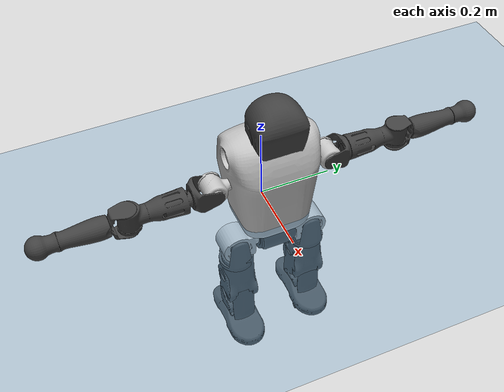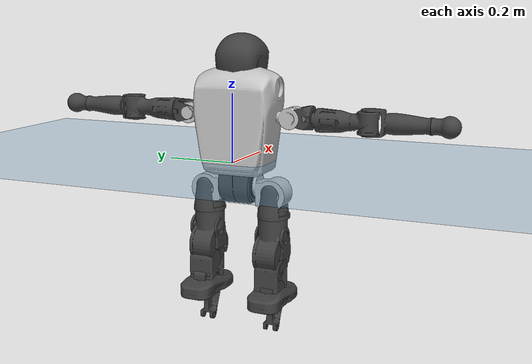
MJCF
<mujoco model="T1">
  <compiler angle="radian" assetdir="assets" balanceinertia="true" inertiafromgeom="false"/>

  <option timestep="0.005" density="1.2" viscosity="2e-05"/>

  <size nkey="1"/>

  <visual>
    <quality shadowsize="8192"/>
    <map shadowclip="0.5"/>
  </visual>

  <default>
    <default class="/">
      <joint armature="0.01" damping="0.01" frictionloss="0.1"/>
      <geom contype="0" conaffinity="0" group="1" solref="-1000 -80"/>
      <site size="0.01 0.005 0.005" group="5"/>
      <general forcelimited="true" biastype="affine" gainprm="25" biasprm="0 -25 -0.6"/>
      <default class="t1">
        <geom rgba="0.25 0.25 0.25 1"/>
        <default class="visual">
          <geom type="mesh" group="2"/>
        </default>
        <default class="collision">
          <geom group="3"/>
        </default>
        <default class="foot">
          <geom size="0.1115 0.05 0.015" type="box" condim="6" group="4" priority="1" solimp="0.015 1 0.015"/>
        </default>
        <default class="reward_collision_sphere">
          <geom group="5" rgba="1 0 0 1"/>
        </default>
      </default>
    </default>
  </default>

  <asset>
    <texture type="skybox" colorspace="auto" name="//unnamed_texture_0" builtin="gradient" rgb1="0.95 0.95 0.95" rgb2="0.95 0.95 0.95" width="100" height="600"/>
    <texture type="2d" colorspace="auto" name="texplane" builtin="checker" rgb1="0.345 0.575 0.748" rgb2="0.345 0.575 0.748" markrgb="1 1 1" width="512" height="512"/>
    <material name="MatPlane" class="/" texture="texplane" texuniform="true" texrepeat="2 2" specular="0.9"/>
    <mesh name="Trunk" class="/" file="Trunk.stl"/>
    <mesh name="H1" class="/" file="H1.stl"/>
    <mesh name="H2" class="/" file="H2.stl"/>
    <mesh name="AL1" class="/" file="AL1.stl"/>
    <mesh name="AL2" class="/" file="AL2.stl"/>
    <mesh name="AL3" class="/" file="AL3.stl"/>
    <mesh name="left_hand_link" class="/" file="left_hand_link.stl"/>
    <mesh name="AR1" class="/" file="AR1.stl"/>
    <mesh name="AR2" class="/" file="AR2.stl"/>
    <mesh name="AR3" class="/" file="AR3.stl"/>
    <mesh name="right_hand_link" class="/" file="right_hand_link.stl"/>
    <mesh name="Waist" class="/" file="Waist.stl"/>
    <mesh name="Hip_Pitch_Left" class="/" file="Hip_Pitch_Left.stl"/>
    <mesh name="Hip_Roll_Left" class="/" file="Hip_Roll_Left.stl"/>
    <mesh name="Hip_Yaw_Left" class="/" file="Hip_Yaw_Left.stl"/>
    <mesh name="Shank_Left" class="/" file="Shank_Left.stl"/>
    <mesh name="Ankle_Cross_Left" class="/" file="Ankle_Cross_Left.stl"/>
    <mesh name="left_foot_link" class="/" file="left_foot_link.stl"/>
    <mesh name="Hip_Pitch_Right" class="/" file="Hip_Pitch_Right.stl"/>
    <mesh name="Hip_Roll_Right" class="/" file="Hip_Roll_Right.stl"/>
    <mesh name="Hip_Yaw_Right" class="/" file="Hip_Yaw_Right.stl"/>
    <mesh name="Shank_Right" class="/" file="Shank_Right.stl"/>
    <mesh name="Ankle_Cross_Right" class="/" file="Ankle_Cross_Right.stl"/>
    <mesh name="right_foot_link" class="/" file="right_foot_link.stl"/>
  </asset>

  <worldbody>
    <geom name="floor" class="/" size="100 100 0.125" type="plane" group="0" material="MatPlane"/>
    <light name="toplight_shadow" class="/" pos="0 0 5" dir="0.0990148 0.0990148 -0.990148" type="directional" ambient="0.04 0.04 0.04" diffuse="0.55 0.55 0.55" specular="0.12 0.12 0.12"/>
    <light name="toplight_fill" class="/" pos="0 0 5" dir="0.0990148 0.0990148 -0.990148" type="directional" castshadow="false" ambient="0.04 0.04 0.04" diffuse="0.3 0.3 0.3" specular="0.08 0.08 0.08"/>
    <body name="trunk" childclass="t1" pos="-0.0017602 0.000284642 -0.00363456" quat="0.999999 0.000783932 -0.00083245 -0.000155266">
      <inertial pos="0.0558462 -0.00369131 0.0622885" quat="0.999957 0.000876966 -0.00917373 0.000981354" mass="8.60542" diaginertia="0.103964 0.0915704 0.00490473"/>
      <joint name="//unnamed_joint_0" type="free" armature="0" damping="0" frictionloss="0"/>
      <geom name="//unnamed_geom_1" class="visual" rgba="0.76 0.76 0.76 1" mesh="Trunk"/>
      <geom name="//unnamed_geom_2" class="collision" size="0.0661317 0.0881756 0.132263" pos="0.0609578 0 0.0724582" type="box"/>
      <geom name="//unnamed_geom_3" class="reward_collision_sphere" size="0.101402" pos="0.0609578 0 0.0603818"/>
      <geom name="//unnamed_geom_4" class="reward_collision_sphere" size="0.0132263" pos="0.0609578 0.0871663 0"/>
      <geom name="//unnamed_geom_5" class="reward_collision_sphere" size="0.0132263" pos="0.0609578 -0.0871663 0"/>
      <geom name="//unnamed_geom_6" class="reward_collision_sphere" size="0.0132263" pos="0.0609578 0.109727 0.108687"/>
      <geom name="//unnamed_geom_7" class="reward_collision_sphere" size="0.0132263" pos="0.0609578 -0.109727 0.108687"/>
      <site name="imu" pos="-0.0348269 0.0248302 0.00252583" size="0.00881756"/>
      <camera name="track" pos="0 -2.05097 0" quat="0.707107 0.707107 0 0" mode="trackcom"/>
      <camera name="ego_camera" pos="0.123948 0 0.253604" quat="-0.5 -0.5 0.5 0.5"/>
      <body name="H1" pos="0.0622415 0.000960532 0.145334" quat="1 3.97287e-05 -0.000201344 0.000392402">
        <inertial pos="-1.36025e-05 -0.00388031 0.0325252" quat="0.763802 -0.0208815 3.84354e-05 0.645112" mass="0.293228" diaginertia="0.000246098 0.00025121 1.13134e-05"/>
        <joint name="AAHead_yaw" pos="0 0 0" axis="0.00114391 0.000646454 0.999999" range="-1.55991 1.53923" armature="0.00961314" damping="0.0103952" frictionloss="0.0804188"/>
        <geom name="//unnamed_geom_8" class="visual" mesh="H1"/>
        <body name="H2" pos="-0.000390073 0.00555075 0.0359142" quat="1 1.53989e-05 -0.00040981 5.16685e-05">
          <inertial pos="0.000529537 -0.00479674 0.0575003" quat="0.987747 0.109807 -0.0737573 -0.0828096" mass="0.403003" diaginertia="0.00226979 0.00218593 0.000136822"/>
          <joint name="Head_pitch" pos="0 0 0" axis="-0.0083973 -0.999954 -0.00465292" range="-1.22868 0.308219" armature="0.0108769" damping="0.00857736" frictionloss="0.0859452"/>
          <geom name="//unnamed_geom_9" class="visual" mesh="H2"/>
          <geom name="//unnamed_geom_10" class="collision" size="0.0705405" pos="0.0101596 0 0.06642"/>
          <geom name="//unnamed_geom_11" class="reward_collision_sphere" size="0.079358" pos="0.0203193 0 0.0603818"/>
        </body>
      </body>
      <body name="AL1" pos="0.0620698 0.112217 0.135558" quat="1 -8.97011e-05 0.000426983 4.09292e-05">
        <inertial pos="-0.000499324 0.0459363 -0.00572896" quat="0.502126 0.496691 -0.505474 0.495644" mass="0.356315" diaginertia="0.00144607 0.00147318 2.37532e-05"/>
        <joint name="Left_Shoulder_Pitch" pos="0 0 0" axis="-0.0034679 0.999979 -0.00546108" stiffness="0.0237592" range="-3.20407 1.26015" armature="0.00979444" damping="0.0144575" frictionloss="0.0913458"/>
        <geom name="//unnamed_geom_12" class="visual" rgba="0.76 0.76 0.76 1" mesh="AL1"/>
        <body name="AL2" pos="0.00454237 0.0430219 0.0020212" quat="0.999994 0.000727644 0.000939028 0.00329339">
          <inertial pos="0.00447557 0.0380885 0.00330488" quat="0.493934 0.503377 -0.493213 0.509295" mass="0.0921344" diaginertia="0.000391792 0.000347058 1.27727e-05"/>
          <joint name="Left_Shoulder_Roll" pos="0 0 0" axis="-0.999199 0.00612424 0.0395497" stiffness="0.00382294" range="-1.54147 1.74974" armature="0.00863674" damping="0.0371584" frictionloss="0.0839455"/>
          <geom name="//unnamed_geom_13" class="visual" mesh="AL2"/>
          <body name="AL3" pos="0.00104588 0.0569176 0.00202727" quat="0.999993 0.00162506 0.000661786 -0.00335608">
            <inertial pos="0.00239253 0.0895777 0.000223331" quat="0.713914 0.700023 -0.0155047 -0.00744033" mass="0.650976" diaginertia="0.0126131 0.0137634 4.6439e-05"/>
            <joint name="Left_Elbow_Pitch" pos="0 0 0" axis="0.00220218 -0.999987 0.00469628" stiffness="0.00875718" range="-2.27287 2.2781" armature="0.00933498" damping="0.00563593" frictionloss="0.0914005"/>
            <geom name="//unnamed_geom_14" class="visual" mesh="AL3"/>
            <geom name="//unnamed_geom_15" class="collision" size="0.0264527 0.0661317" pos="0 0.0512743 0" quat="0.707105 0.707108 0 0" type="cylinder"/>
            <geom name="//unnamed_geom_16" class="reward_collision_sphere" size="0.0317432"/>
            <body name="left_hand_link" pos="0.00383084 0.144261 -0.00158359" quat="0.999996 0.000852238 0.00237953 0.00146618">
              <inertial pos="-0.00162178 0.112291 0.00572691" quat="0.699907 0.713867 -0.00830255 0.0213428" mass="0.24342" diaginertia="0.00960144 0.0102448 1.89361e-05"/>
              <joint name="Left_Elbow_Yaw" pos="0 0 0" axis="0.0216063 0.00226392 0.999764" range="-2.44126 -0.0730623" armature="0.00846135" damping="0.0161254" frictionloss="0.057509"/>
              <geom name="//unnamed_geom_17" class="visual" mesh="left_hand_link"/>
              <geom name="//unnamed_geom_18" class="collision" size="0.0264527 0.0771536" pos="0 0.133313 0" quat="0.707105 0.707108 0 0" type="cylinder"/>
              <geom name="//unnamed_geom_19" class="reward_collision_sphere" size="0.0440878"/>
              <geom name="//unnamed_geom_20" class="reward_collision_sphere" size="0.0308615" pos="0 0.112803 0"/>
              <geom name="//unnamed_geom_21" class="reward_collision_sphere" size="0.0308615" pos="0 0.22048 0"/>
            </body>
          </body>
        </body>
      </body>
      <body name="AR1" pos="0.0629381 -0.111479 0.135282" quat="1 0.000278924 -0.000713335 -0.000408323">
        <inertial pos="0.000740494 -0.0481631 0.0027097" quat="0.506789 0.487467 -0.504988 0.500529" mass="0.352125" diaginertia="0.00146608 0.00139027 2.24467e-05"/>
        <joint name="Right_Shoulder_Pitch" pos="0 0 0" axis="-0.00277967 -0.999996 -0.000955874" range="-1.34391 3.25729" armature="0.00817621" damping="0" frictionloss="0.0912489"/>
        <geom name="//unnamed_geom_22" class="visual" rgba="0.76 0.76 0.76 1" mesh="AR1"/>
        <body name="AR2" pos="0.00573736 -0.0514653 0.00201453" quat="1 7.55729e-05 -5.93208e-06 0.000184335">
          <inertial pos="0.00495903 -0.0382488 0.00275444" quat="0.515827 0.4882 -0.508075 0.487281" mass="0.113954" diaginertia="0.000467154 0.000431064 1.39911e-05"/>
          <joint name="Right_Shoulder_Roll" pos="0 0 0" axis="-0.999999 -0.000290682 -0.00143704" range="-1.75062 1.68808" armature="0.0092223" damping="0.0117148" frictionloss="0.11214"/>
          <geom name="//unnamed_geom_23" class="visual" mesh="AR2"/>
          <body name="AR3" pos="0.000602882 -0.0689439 -0.00498562" quat="0.999999 0.000114429 0.000823328 0.000719229">
            <inertial pos="-0.00020555 -0.08917 -0.000902677" quat="0.714518 0.69867 -0.00732016 -0.0356406" mass="0.698406" diaginertia="0.0139273 0.0140623 4.82477e-05"/>
            <joint name="Right_Elbow_Pitch" pos="0 0 0" axis="-0.00448233 0.999989 -0.00100795" range="-2.26612 2.25974" armature="0.00776479" damping="0" frictionloss="0.0612055"/>
            <geom name="//unnamed_geom_24" class="visual" mesh="AR3"/>
            <geom name="//unnamed_geom_25" class="collision" size="0.0264527 0.0661317" pos="0 -0.0512743 0" quat="0.707105 0.707108 0 0" type="cylinder"/>
            <geom name="//unnamed_geom_26" class="reward_collision_sphere" size="0.0317432"/>
            <body name="right_hand_link" pos="0.00492692 -0.152747 0.0012985" quat="1 9.30031e-05 0.000262057 0.00011537">
              <inertial pos="0.00237672 -0.112521 -0.00527365" quat="0.702753 0.710968 -0.0227703 0.0119903" mass="0.24981" diaginertia="0.00978574 0.0100779 1.88508e-05"/>
              <joint name="Right_Elbow_Yaw" pos="0 0 0" axis="0.013281 0.00703606 0.999887" range="0.0722468 2.47897" armature="0.00549393" damping="0.0138662" frictionloss="0.0868173"/>
              <geom name="//unnamed_geom_27" class="visual" mesh="right_hand_link"/>
              <geom name="//unnamed_geom_28" class="collision" size="0.0264527 0.0771536" pos="0 -0.133313 0" quat="0.707105 0.707108 0 0" type="cylinder"/>
              <geom name="//unnamed_geom_29" class="reward_collision_sphere" size="0.0440878"/>
              <geom name="//unnamed_geom_30" class="reward_collision_sphere" size="0.0308615" pos="0 -0.112803 0"/>
              <geom name="//unnamed_geom_31" class="reward_collision_sphere" size="0.0308615" pos="0 -0.22048 0"/>
            </body>
          </body>
        </body>
      </body>
      <body name="Waist" pos="0.0620847 0.00112315 -0.0661389" quat="1 -0.000224166 -0.000116646 0.000518677">
        <inertial pos="-0.00365718 -0.00070876 0.0030503" quat="0.983663 0.000894135 -0.179989 0.00319157" mass="1.8044" diaginertia="0.00610118 0.00675836 0.00040989"/>
        <joint name="Waist" pos="0 0 0" axis="0.00341524 -0.00557353 0.999979" range="-1.71247 1.57547" armature="0.0105691" damping="0.013282" frictionloss="0.0780651"/>
        <geom name="//unnamed_geom_32" class="visual" mesh="Waist"/>
        <body name="Hip_Pitch_Left" pos="0.00558525 0.103811 1.73533e-05" quat="0.999995 0.00158141 0.000361606 -0.00260635">
          <inertial pos="0.00229328 -0.0142727 -0.0107035" quat="0.97509 0.221333 0.0143938 0.00181094" mass="0.696198" diaginertia="0.00201716 0.0015329 0.000102784"/>
          <joint name="Left_Hip_Pitch" pos="0 0 0" axis="-0.0104379 0.999875 -0.0119052" range="-1.80376 1.5319" armature="0.00863116" damping="0.0124086" frictionloss="0.0874637"/>
          <geom name="//unnamed_geom_33" class="visual" rgba="0.76 0.76 0.76 1" mesh="Hip_Pitch_Left"/>
          <body name="Hip_Roll_Left" pos="-0.000999817 0.000170697 -0.011614" quat="0.999997 -0.000108582 -0.00119047 -0.00214147">
            <inertial pos="0.00312616 -0.00050188 -0.0343064" quat="0.707306 -0.00315661 -0.00242376 0.706897" mass="0.265232" diaginertia="0.00186814 0.00185668 4.43564e-05"/>
            <joint name="Left_Hip_Roll" pos="0 0 0" axis="-0.999985 0.00437031 -0.00339177" stiffness="0.0075748" range="-1.53077 0.172564" armature="0.0084199" damping="0" frictionloss="0.0720102"/>
            <geom name="//unnamed_geom_34" class="visual" mesh="Hip_Roll_Left"/>
            <geom name="//unnamed_geom_35" class="reward_collision_sphere" size="0.0484966"/>
            <body name="Hip_Yaw_Left" pos="-0.00211039 -0.0010841 -0.0468733" quat="1 0.000710074 -0.000276423 -0.000536263">
              <inertial pos="-0.00509141 -0.000727111 -0.0555509" quat="0.681548 -0.0598566 -0.0421545 0.728102" mass="1.48612" diaginertia="0.0285949 0.0311683 0.000205636"/>
              <joint name="Left_Hip_Yaw" pos="0 0 0" axis="-0.0252677 -2.48973e-06 -0.999681" stiffness="0.00315638" range="-0.991913 1.06242" armature="0.00857033" damping="0" frictionloss="0.0886178"/>
              <geom name="//unnamed_geom_36" class="visual" mesh="Hip_Yaw_Left"/>
              <geom name="//unnamed_geom_37" class="collision" size="0.0440878 0.0705405" type="cylinder"/>
              <body name="Shank_Left" pos="-0.0141994 0.000408645 -0.0810361" quat="1 5.35725e-05 -0.000127159 0.000384018">
                <inertial pos="-0.00707069 0.00139976 -0.0744176" quat="0.996325 -0.00147713 -0.0351307 0.0781095" mass="1.16219" diaginertia="0.0369427 0.0371903 0.000145929"/>
                <joint name="Left_Knee_Pitch" pos="0 0 0" axis="-0.00563941 0.999932 -0.0102157" range="0.0120088 2.35579" armature="0.00943879" damping="0" frictionloss="0.0681578"/>
                <geom name="//unnamed_geom_38" class="visual" mesh="Shank_Left"/>
                <geom name="//unnamed_geom_39" class="collision" size="0.0440878 0.0661317" pos="0 0 -0.0724582" type="cylinder"/>
                <geom name="//unnamed_geom_40" class="reward_collision_sphere" size="0.0573141"/>
                <body name="Ankle_Cross_Left" pos="-0.000693072 0.000646401 -0.168982" quat="1 0.000159304 0.000645744 -0.000418091">
                  <inertial pos="-0.00593977 -0.000630952 0.00236077" quat="0.444247 0.55098 0.553354 0.439165" mass="0.0481257" diaginertia="2.75767e-05 2.79641e-05 8.6398e-07"/>
                  <joint name="Left_Ankle_Pitch" pos="0 0 0" axis="0.00430426 0.99999 0.00156233" range="-0.722202 0.322992" armature="0.00926986" damping="0.0147355" frictionloss="0.0665849"/>
                  <geom name="//unnamed_geom_41" class="visual" mesh="Ankle_Cross_Left"/>
                  <body name="left_foot_link" pos="-0.00533382 0.000536571 -0.000979347" quat="1 0.000125009 -0.000355978 0.000279276">
                    <inertial pos="-0.0014397 0.00585502 -0.00338944" quat="0.00161995 0.616235 0.00261451 0.787556" mass="0.475956" diaginertia="0.00286134 0.0027197 0.000180246"/>
                    <joint name="Left_Ankle_Roll" pos="0 0 0" axis="-0.999974 -0.00339766 -0.00640921" range="-0.404764 0.431288" armature="0.00835759" damping="0" frictionloss="0.0983291"/>
                    <geom name="//unnamed_geom_42" class="visual" mesh="left_foot_link"/>
                    <geom name="left_foot" class="foot" size="0.103151 0.0338148 0.0130616" pos="0.0101596 0 -0.00905727"/>
                    <geom name="//unnamed_geom_44" class="reward_collision_sphere" size="0.0458513" pos="0.0101596 0 -0.00905727"/>
                    <geom name="//unnamed_geom_45" class="reward_collision_sphere" size="0.0264527" pos="0.0965165 -0.0235862 -0.00905727"/>
                    <geom name="//unnamed_geom_46" class="reward_collision_sphere" size="0.0264527" pos="-0.0711175 -0.0235862 -0.00905727"/>
                    <site name="left_foot" class="foot" pos="0.0101596 0 -0.00905727" size="0.00881756"/>
                  </body>
                </body>
              </body>
            </body>
          </body>
        </body>
        <body name="Hip_Pitch_Right" pos="0.000438546 -0.106572 -0.00360526" quat="1 -2.62904e-05 0.000274251 0.000376445">
          <inertial pos="0.000755422 0.00926094 -0.0166891" quat="0.9776 -0.210362 0.00463382 0.0049192" mass="0.717096" diaginertia="0.00198812 0.0017101 9.77926e-05"/>
          <joint name="Right_Hip_Pitch" pos="0 0 0" axis="0.0155214 -0.99981 0.0117562" stiffness="0.00215746" range="-1.5785 1.81976" armature="0.00711821" damping="0" frictionloss="0.08352"/>
          <geom name="//unnamed_geom_47" class="visual" rgba="0.76 0.76 0.76 1" mesh="Hip_Pitch_Right"/>
          <body name="Hip_Roll_Right" pos="-0.0015612 0.000702952 -0.0129644" quat="0.999993 0.00323678 -0.00149638 0.000585009">
            <inertial pos="-0.00568309 0.000760219 -0.0300175" quat="0.705211 0.0115103 6.15087e-07 0.708904" mass="0.275015" diaginertia="0.00202004 0.00182689 4.24817e-05"/>
            <joint name="Right_Hip_Roll" pos="0 0 0" axis="-0.99997 0.00233559 0.0073576" range="-0.189941 1.4968" armature="0.00973825" damping="0.007586" frictionloss="0.0896066"/>
            <geom name="//unnamed_geom_48" class="visual" mesh="Hip_Roll_Right"/>
            <geom name="//unnamed_geom_49" class="reward_collision_sphere" size="0.0484966"/>
            <body name="Hip_Yaw_Right" pos="0.00156824 0.00341761 -0.0517771" quat="0.999997 0.00192551 -0.00172083 0.000339443">
              <inertial pos="-0.00860605 -0.0024991 -0.0529866" quat="0.708343 -0.026374 -0.0309653 0.704695" mass="1.40607" diaginertia="0.0243422 0.0243815 0.000193726"/>
              <joint name="Right_Hip_Yaw" pos="0 0 0" axis="0.00239028 -0.00662894 -0.999975" stiffness="0.00702599" range="-1.01218 1.14426" armature="0.00833828" damping="0.0117426" frictionloss="0.112227"/>
              <geom name="//unnamed_geom_50" class="visual" mesh="Hip_Yaw_Right"/>
              <geom name="//unnamed_geom_51" class="collision" size="0.0440878 0.0705405" type="cylinder"/>
              <body name="Shank_Right" pos="-0.00830148 -0.002426 -0.0817065" quat="0.999996 0.00108709 -0.00173156 0.00172657">
                <inertial pos="-0.0109214 -0.00106066 -0.0767688" quat="0.999417 0.00186985 -0.0197482 -0.0277772" mass="1.08679" diaginertia="0.0380252 0.0408061 0.000159702"/>
                <joint name="Right_Knee_Pitch" pos="0 0 0" axis="0.00501717 -0.999884 -0.0143552" range="-2.37281 0.00790908" armature="0.00991562" damping="0.00143644" frictionloss="0.0888817"/>
                <geom name="//unnamed_geom_52" class="visual" mesh="Shank_Right"/>
                <geom name="//unnamed_geom_53" class="collision" size="0.0440878 0.0661317" pos="0 0 -0.0724582" type="cylinder"/>
                <geom name="//unnamed_geom_54" class="reward_collision_sphere" size="0.0573141"/>
                <body name="Ankle_Cross_Right" pos="0.00285449 -0.000879462 -0.166285" quat="0.999997 0.0011819 -0.000856046 0.00196281">
                  <inertial pos="-0.00386434 0.000278302 -0.00458715" quat="0.44353 0.551488 0.551157 0.442005" mass="0.0549942" diaginertia="3.25535e-05 2.98569e-05 9.13442e-07"/>
                  <joint name="Right_Ankle_Pitch" pos="0 0 0" axis="-0.0366994 -0.999324 0.00229471" stiffness="0.00871938" range="-0.356388 0.924093" armature="0.00717012" damping="0.0166433" frictionloss="0.119614"/>
                  <geom name="//unnamed_geom_55" class="visual" mesh="Ankle_Cross_Right"/>
                  <body name="right_foot_link" pos="-0.00250207 -0.00264247 -0.00837233" quat="1 5.36012e-05 1.88397e-05 -0.00045506">
                    <inertial pos="0.00149421 -0.0012147 -0.000869418" quat="-0.0106252 0.623525 -0.00347063 0.781724" mass="0.447174" diaginertia="0.00302414 0.00280228 0.000176954"/>
                    <joint name="Right_Ankle_Roll" pos="0 0 0" axis="-0.999831 -0.0166176 0.00782595" range="-0.586074 0.4335" armature="0.010349" damping="0.0100184" frictionloss="0.0979399"/>
                    <geom name="//unnamed_geom_56" class="visual" mesh="right_foot_link"/>
                    <geom name="right_foot" class="foot" size="0.123086 0.0347627 0.0117137" pos="0.0101596 0 -0.00905727"/>
                    <geom name="//unnamed_geom_58" class="reward_collision_sphere" size="0.0352702"/>
                    <geom name="//unnamed_geom_59" class="reward_collision_sphere" size="0.0264527" pos="0.0101596 0 -0.00905727"/>
                    <geom name="//unnamed_geom_60" class="reward_collision_sphere" size="0.0264527" pos="0.0965165 0.0235862 -0.00905727"/>
                    <geom name="//unnamed_geom_61" class="reward_collision_sphere" size="0.0264527" pos="-0.0711175 0.0235862 -0.00905727"/>
                    <site name="right_foot" class="foot" pos="0.0101596 0 -0.00905727" size="0.00881756"/>
                  </body>
                </body>
              </body>
            </body>
          </body>
        </body>
      </body>
    </body>
  </worldbody>

  <contact>
    <pair class="/" geom1="floor" geom2="left_foot" name="//unnamed_contact_0"/>
    <pair class="/" geom1="floor" geom2="right_foot" name="//unnamed_contact_1"/>
  </contact>

  <actuator>
    <general name="AAHead_yaw" class="/" joint="AAHead_yaw" forcerange="-6.23791 6.23791" gainprm="20.2802" biasprm="0 -20.2802 -0.545907"/>
    <general name="Head_pitch" class="/" joint="Head_pitch" forcerange="-6.71395 6.71395" gainprm="20.2802" biasprm="0 -20.2802 -0.545907"/>
    <general name="Left_Shoulder_Pitch" class="/" joint="Left_Shoulder_Pitch" forcerange="-15.2765 15.2765" gainprm="20.2802" biasprm="0 -20.2802 -0.545907"/>
    <general name="Left_Shoulder_Roll" class="/" joint="Left_Shoulder_Roll" forcerange="-15.5615 15.5615" gainprm="20.2802" biasprm="0 -20.2802 -0.545907"/>
    <general name="Left_Elbow_Pitch" class="/" joint="Left_Elbow_Pitch" forcerange="-13.372 13.372" gainprm="20.2802" biasprm="0 -20.2802 -0.545907"/>
    <general name="Left_Elbow_Yaw" class="/" joint="Left_Elbow_Yaw" forcerange="-14.6294 14.6294" gainprm="20.2802" biasprm="0 -20.2802 -0.545907"/>
    <general name="Right_Shoulder_Pitch" class="/" joint="Right_Shoulder_Pitch" forcerange="-15.2693 15.2693" gainprm="20.2802" biasprm="0 -20.2802 -0.545907"/>
    <general name="Right_Shoulder_Roll" class="/" joint="Right_Shoulder_Roll" forcerange="-15.9548 15.9548" gainprm="20.2802" biasprm="0 -20.2802 -0.545907"/>
    <general name="Right_Elbow_Pitch" class="/" joint="Right_Elbow_Pitch" forcerange="-15.0646 15.0646" gainprm="20.2802" biasprm="0 -20.2802 -0.545907"/>
    <general name="Right_Elbow_Yaw" class="/" joint="Right_Elbow_Yaw" forcerange="-13.1175 13.1175" gainprm="20.2802" biasprm="0 -20.2802 -0.545907"/>
    <general name="Waist" class="/" joint="Waist" forcerange="-26.6158 26.6158" gainprm="20.2802" biasprm="0 -20.2802 -0.545907"/>
    <general name="Left_Hip_Pitch" class="/" joint="Left_Hip_Pitch" forcerange="-50.2529 50.2529" gainprm="20.2802" biasprm="0 -20.2802 -0.545907"/>
    <general name="Left_Hip_Roll" class="/" joint="Left_Hip_Roll" forcerange="-28.6695 28.6695" gainprm="20.2802" biasprm="0 -20.2802 -0.545907"/>
    <general name="Left_Hip_Yaw" class="/" joint="Left_Hip_Yaw" forcerange="-27.794 27.794" gainprm="20.2802" biasprm="0 -20.2802 -0.545907"/>
    <general name="Left_Knee_Pitch" class="/" joint="Left_Knee_Pitch" forcerange="-43.2649 43.2649" gainprm="20.2802" biasprm="0 -20.2802 -0.545907"/>
    <general name="Left_Ankle_Pitch" class="/" joint="Left_Ankle_Pitch" forcerange="-19.1556 19.1556" gainprm="20.2802" biasprm="0 -20.2802 -0.545907"/>
    <general name="Left_Ankle_Roll" class="/" joint="Left_Ankle_Roll" forcerange="-13.6137 13.6137" gainprm="20.2802" biasprm="0 -20.2802 -0.545907"/>
    <general name="Right_Hip_Pitch" class="/" joint="Right_Hip_Pitch" forcerange="-30.6609 30.6609" gainprm="20.2802" biasprm="0 -20.2802 -0.545907"/>
    <general name="Right_Hip_Roll" class="/" joint="Right_Hip_Roll" forcerange="-28.4532 28.4532" gainprm="20.2802" biasprm="0 -20.2802 -0.545907"/>
    <general name="Right_Hip_Yaw" class="/" joint="Right_Hip_Yaw" forcerange="-27.8075 27.8075" gainprm="20.2802" biasprm="0 -20.2802 -0.545907"/>
    <general name="Right_Knee_Pitch" class="/" joint="Right_Knee_Pitch" forcerange="-49.3082 49.3082" gainprm="20.2802" biasprm="0 -20.2802 -0.545907"/>
    <general name="Right_Ankle_Pitch" class="/" joint="Right_Ankle_Pitch" forcerange="-17.6984 17.6984" gainprm="20.2802" biasprm="0 -20.2802 -0.545907"/>
    <general name="Right_Ankle_Roll" class="/" joint="Right_Ankle_Roll" forcerange="-16.2673 16.2673" gainprm="20.2802" biasprm="0 -20.2802 -0.545907"/>
  </actuator>

  <sensor>
    <gyro site="imu" name="imu_angular_velocity"/>
    <velocimeter site="imu" name="imu_linear_velocity"/>
    <framelinvel objtype="site" objname="left_foot" name="left_foot_global_linear_velocity"/>
    <framelinvel objtype="site" objname="right_foot" name="right_foot_global_linear_velocity"/>
  </sensor>

  <keyframe>
    <key name="home" qpos="0 0 0.6385 1 0 0 0 0 0 0 1.4 0 -0.4 0 -1.4 0 0.4 0 -0.4 0 0 0.8 -0.4 0 0.4 0 0 -0.8 0.4 0"/>
  </keyframe>
</mujoco>
